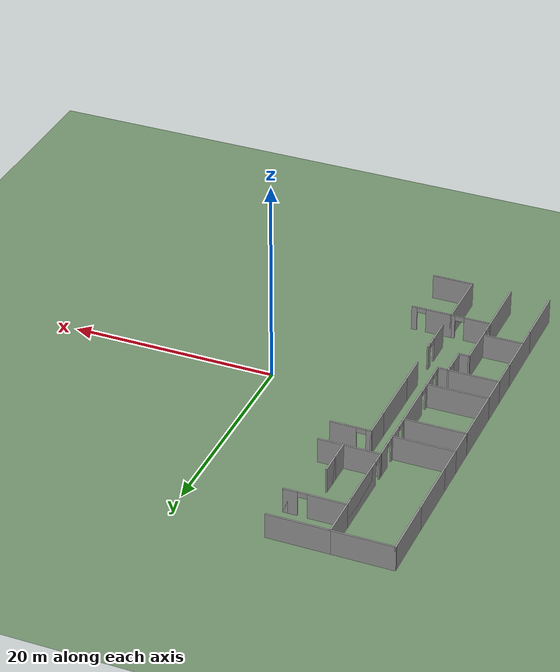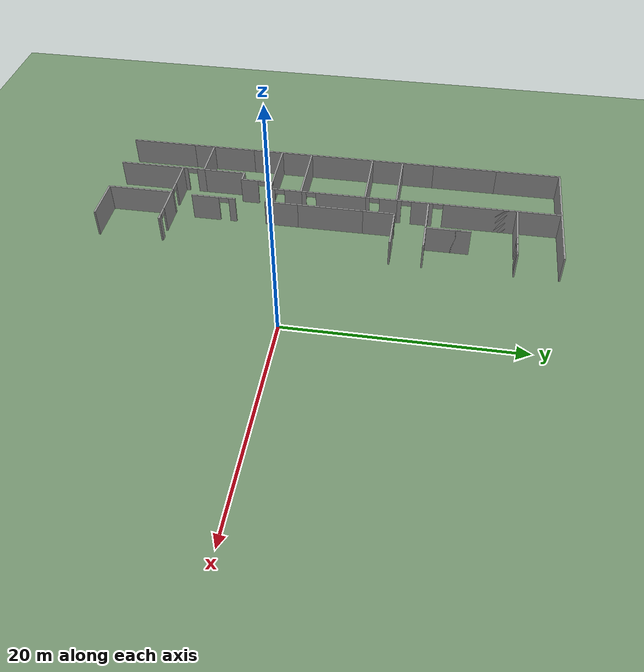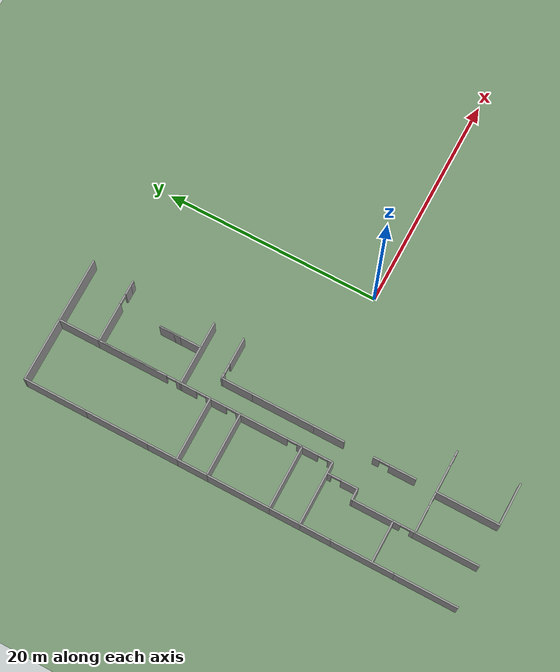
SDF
<sdf version="1.7">
 <world name="default">
  <model name="ground_plane">
   <static>1</static>
   <link name="link">
    <collision name="collision">
     <geometry><plane><normal>0 0 1</normal><size>600 600</size></plane></geometry>
     <surface>
      <contact><collide_bitmask>65535</collide_bitmask></contact>
      <friction><ode><mu>100</mu><mu2>50</mu2></ode></friction>
     </surface>
    </collision>
    <visual name="visual">
     <cast_shadows>0</cast_shadows>
     <geometry><plane><normal>0 0 1</normal><size>100 100</size></plane></geometry>
     <material><ambient>0.45 0.57 0.43 1</ambient><diffuse>0.45 0.57 0.43 1</diffuse></material>
    </visual>
   </link>
  </model>
  <model name="myhal_V3">
   <pose>-0.2201 2.1339 0 0 -0 0</pose>
   <link name="Wall_338">
    <collision name="Wall_338_Collision">
     <geometry><box><size>6 0.15 2.5</size></box></geometry>
     <pose>0 0 1.25 0 -0 0</pose>
    </collision>
    <visual name="Wall_338_Visual">
     <pose>0 0 1.25 0 -0 0</pose>
     <geometry><box><size>6 0.15 2.5</size></box></geometry>
     <material>
      <script><uri>file://media/materials/scripts/gazebo.material</uri><name>Gazebo/Grey</name></script>
      <ambient>1 1 1 1</ambient>
     </material>
     <meta><layer>0</layer></meta>
    </visual>
    <pose>-11.7 20.325 0 0 -0 3.14159</pose>
   </link>
   <link name="Wall_339">
    <collision name="Wall_339_Collision">
     <geometry><box><size>6 0.15 2.5</size></box></geometry>
     <pose>0 0 1.25 0 -0 0</pose>
    </collision>
    <visual name="Wall_339_Visual">
     <pose>0 0 1.25 0 -0 0</pose>
     <geometry><box><size>6 0.15 2.5</size></box></geometry>
     <material>
      <script><uri>file://media/materials/scripts/gazebo.material</uri><name>Gazebo/Grey</name></script>
      <ambient>1 1 1 1</ambient>
     </material>
     <meta><layer>0</layer></meta>
    </visual>
    <pose>-17.55 20.325 0 0 -0 3.14159</pose>
   </link>
   <link name="Wall_341">
    <collision name="Wall_341_Collision">
     <geometry><box><size>6 0.15 2.5</size></box></geometry>
     <pose>0 0 1.25 0 -0 0</pose>
    </collision>
    <visual name="Wall_341_Visual">
     <pose>0 0 1.25 0 -0 0</pose>
     <geometry><box><size>6 0.15 2.5</size></box></geometry>
     <material>
      <script><uri>file://media/materials/scripts/gazebo.material</uri><name>Gazebo/Grey</name></script>
      <ambient>1 1 1 1</ambient>
     </material>
     <meta><layer>0</layer></meta>
    </visual>
    <pose>-20.475 17.4 0 0 -0 -1.5708</pose>
   </link>
   <link name="Wall_342">
    <collision name="Wall_342_Collision">
     <geometry><box><size>6 0.15 2.5</size></box></geometry>
     <pose>0 0 1.25 0 -0 0</pose>
    </collision>
    <visual name="Wall_342_Visual">
     <pose>0 0 1.25 0 -0 0</pose>
     <geometry><box><size>6 0.15 2.5</size></box></geometry>
     <material>
      <script><uri>file://media/materials/scripts/gazebo.material</uri><name>Gazebo/Grey</name></script>
      <ambient>1 1 1 1</ambient>
     </material>
     <meta><layer>0</layer></meta>
    </visual>
    <pose>-20.475 11.55 0 0 -0 -1.5708</pose>
   </link>
   <link name="Wall_343">
    <collision name="Wall_343_Collision">
     <geometry><box><size>3 0.15 2.5</size></box></geometry>
     <pose>0 0 1.25 0 -0 0</pose>
    </collision>
    <visual name="Wall_343_Visual">
     <pose>0 0 1.25 0 -0 0</pose>
     <geometry><box><size>3 0.15 2.5</size></box></geometry>
     <material>
      <script><uri>file://media/materials/scripts/gazebo.material</uri><name>Gazebo/Grey</name></script>
      <ambient>1 1 1 1</ambient>
     </material>
     <meta><layer>0</layer></meta>
    </visual>
    <pose>-20.475 7.2 0 0 -0 -1.5708</pose>
   </link>
   <link name="Wall_344">
    <collision name="Wall_344_Collision">
     <geometry><box><size>3 0.15 2.5</size></box></geometry>
     <pose>0 0 1.25 0 -0 0</pose>
    </collision>
    <visual name="Wall_344_Visual">
     <pose>0 0 1.25 0 -0 0</pose>
     <geometry><box><size>3 0.15 2.5</size></box></geometry>
     <material>
      <script><uri>file://media/materials/scripts/gazebo.material</uri><name>Gazebo/Grey</name></script>
      <ambient>1 1 1 1</ambient>
     </material>
     <meta><layer>0</layer></meta>
    </visual>
    <pose>-20.475 4.35 0 0 -0 -1.5708</pose>
   </link>
   <link name="Wall_345">
    <collision name="Wall_345_Collision">
     <geometry><box><size>6 0.15 2.5</size></box></geometry>
     <pose>0 0 1.25 0 -0 0</pose>
    </collision>
    <visual name="Wall_345_Visual">
     <pose>0 0 1.25 0 -0 0</pose>
     <geometry><box><size>6 0.15 2.5</size></box></geometry>
     <material>
      <script><uri>file://media/materials/scripts/gazebo.material</uri><name>Gazebo/Grey</name></script>
      <ambient>1 1 1 1</ambient>
     </material>
     <meta><layer>0</layer></meta>
    </visual>
    <pose>-20.475 0 0 0 -0 -1.5708</pose>
   </link>
   <link name="Wall_347">
    <collision name="Wall_347_Collision">
     <geometry><box><size>3 0.15 2.5</size></box></geometry>
     <pose>0 0 1.25 0 -0 0</pose>
    </collision>
    <visual name="Wall_347_Visual">
     <pose>0 0 1.25 0 -0 0</pose>
     <geometry><box><size>3 0.15 2.5</size></box></geometry>
     <material>
      <script><uri>file://media/materials/scripts/gazebo.material</uri><name>Gazebo/Grey</name></script>
      <ambient>1 1 1 1</ambient>
     </material>
     <meta><layer>0</layer></meta>
    </visual>
    <pose>-20.475 -4.35 0 0 -0 -1.5708</pose>
   </link>
   <link name="Wall_348">
    <collision name="Wall_348_Collision">
     <geometry><box><size>3 0.15 2.5</size></box></geometry>
     <pose>0 0 1.25 0 -0 0</pose>
    </collision>
    <visual name="Wall_348_Visual">
     <pose>0 0 1.25 0 -0 0</pose>
     <geometry><box><size>3 0.15 2.5</size></box></geometry>
     <material>
      <script><uri>file://media/materials/scripts/gazebo.material</uri><name>Gazebo/Grey</name></script>
      <ambient>1 1 1 1</ambient>
     </material>
     <meta><layer>0</layer></meta>
    </visual>
    <pose>-20.475 -7.2 0 0 -0 -1.5708</pose>
   </link>
   <link name="Wall_349">
    <collision name="Wall_349_Collision">
     <geometry><box><size>6 0.15 2.5</size></box></geometry>
     <pose>0 0 1.25 0 -0 0</pose>
    </collision>
    <visual name="Wall_349_Visual">
     <pose>0 0 1.25 0 -0 0</pose>
     <geometry><box><size>6 0.15 2.5</size></box></geometry>
     <material>
      <script><uri>file://media/materials/scripts/gazebo.material</uri><name>Gazebo/Grey</name></script>
      <ambient>1 1 1 1</ambient>
     </material>
     <meta><layer>0</layer></meta>
    </visual>
    <pose>-20.475 -11.55 0 0 -0 -1.5708</pose>
   </link>
   <link name="Wall_351">
    <collision name="Wall_351_Collision">
     <geometry><box><size>6 0.15 2.5</size></box></geometry>
     <pose>0 0 1.25 0 -0 0</pose>
    </collision>
    <visual name="Wall_351_Visual">
     <pose>0 0 1.25 0 -0 0</pose>
     <geometry><box><size>6 0.15 2.5</size></box></geometry>
     <material>
      <script><uri>file://media/materials/scripts/gazebo.material</uri><name>Gazebo/Grey</name></script>
      <ambient>1 1 1 1</ambient>
     </material>
     <meta><layer>0</layer></meta>
    </visual>
    <pose>-20.475 -17.4 0 0 -0 -1.5708</pose>
   </link>
   <link name="Wall_358">
    <collision name="Wall_358_Collision">
     <geometry><box><size>4 0.15 2.5</size></box></geometry>
     <pose>0 0 1.25 0 -0 0</pose>
    </collision>
    <visual name="Wall_358_Visual">
     <pose>0 0 1.25 0 -0 0</pose>
     <geometry><box><size>4 0.15 2.5</size></box></geometry>
     <material>
      <script><uri>file://media/materials/scripts/gazebo.material</uri><name>Gazebo/Grey</name></script>
      <ambient>1 1 1 1</ambient>
     </material>
     <meta><layer>0</layer></meta>
    </visual>
    <pose>-14.625 18.4 0 0 -0 1.5708</pose>
   </link>
   <link name="Wall_360">
    <pose>-11.7 16.475 0 0 -0 0</pose>
    <visual name="Wall_360_Visual_0">
     <pose>-1.13429 0 1.25 0 -0 0</pose>
     <geometry><box><size>3.73142 0.15 2.5</size></box></geometry>
     <material>
      <script><uri>file://media/materials/scripts/gazebo.material</uri><name>Gazebo/Grey</name></script>
      <ambient>1 1 1 1</ambient>
     </material>
     <meta><layer>0</layer></meta>
    </visual>
    <collision name="Wall_360_Collision_0">
     <geometry><box><size>3.73142 0.15 2.5</size></box></geometry>
     <pose>-1.13429 0 1.25 0 -0 0</pose>
    </collision>
    <visual name="Wall_360_Visual_1">
     <pose>2.31571 0 1.25 0 -0 0</pose>
     <geometry><box><size>1.36858 0.15 2.5</size></box></geometry>
     <material>
      <script><uri>file://media/materials/scripts/gazebo.material</uri><name>Gazebo/Grey</name></script>
      <ambient>1 1 1 1</ambient>
     </material>
     <meta><layer>0</layer></meta>
    </visual>
    <collision name="Wall_360_Collision_1">
     <geometry><box><size>1.36858 0.15 2.5</size></box></geometry>
     <pose>2.31571 0 1.25 0 -0 0</pose>
    </collision>
    <visual name="Wall_360_Visual_2">
     <pose>2.74704 0 1.25 0 -0 0</pose>
     <geometry><box><size>0.505924 0.15 2.5</size></box></geometry>
     <material>
      <script><uri>file://media/materials/scripts/gazebo.material</uri><name>Gazebo/Grey</name></script>
      <ambient>1 1 1 1</ambient>
     </material>
     <meta><layer>0</layer></meta>
    </visual>
    <collision name="Wall_360_Collision_2">
     <geometry><box><size>0.505924 0.15 2.5</size></box></geometry>
     <pose>2.74704 0 1.25 0 -0 0</pose>
    </collision>
    <visual name="Wall_360_Visual_3">
     <pose>1.16275 0 2.25 0 -0 0</pose>
     <geometry><box><size>0.862653 0.15 0.5</size></box></geometry>
     <material>
      <script><uri>file://media/materials/scripts/gazebo.material</uri><name>Gazebo/Grey</name></script>
      <ambient>1 1 1 1</ambient>
     </material>
     <meta><layer>0</layer></meta>
    </visual>
    <collision name="Wall_360_Collision_3">
     <geometry><box><size>0.862653 0.15 0.5</size></box></geometry>
     <pose>1.16275 0 2.25 0 -0 0</pose>
    </collision>
   </link>
   <link name="Wall_363">
    <collision name="Wall_363_Collision">
     <geometry><box><size>6 0.15 2.5</size></box></geometry>
     <pose>0 0 1.25 0 -0 0</pose>
    </collision>
    <visual name="Wall_363_Visual">
     <pose>0 0 1.25 0 -0 0</pose>
     <geometry><box><size>6 0.15 2.5</size></box></geometry>
     <material>
      <script><uri>file://media/materials/scripts/gazebo.material</uri><name>Gazebo/Grey</name></script>
      <ambient>1 1 1 1</ambient>
     </material>
     <meta><layer>0</layer></meta>
    </visual>
    <pose>-11.7 8.625 0 0 -0 3.14159</pose>
   </link>
   <link name="Wall_364">
    <pose>-14.625 12.55 0 0 -0 1.5708</pose>
    <visual name="Wall_364_Visual_0">
     <pose>-3.75018 0 1.25 0 -0 0</pose>
     <geometry><box><size>0.499636 0.15 2.5</size></box></geometry>
     <material>
      <script><uri>file://media/materials/scripts/gazebo.material</uri><name>Gazebo/Grey</name></script>
      <ambient>1 1 1 1</ambient>
     </material>
     <meta><layer>0</layer></meta>
    </visual>
    <collision name="Wall_364_Collision_0">
     <geometry><box><size>0.499636 0.15 2.5</size></box></geometry>
     <pose>-3.75018 0 1.25 0 -0 0</pose>
    </collision>
    <visual name="Wall_364_Visual_1">
     <pose>0.699818 0 1.25 0 -0 0</pose>
     <geometry><box><size>6.60036 0.15 2.5</size></box></geometry>
     <material>
      <script><uri>file://media/materials/scripts/gazebo.material</uri><name>Gazebo/Grey</name></script>
      <ambient>1 1 1 1</ambient>
     </material>
     <meta><layer>0</layer></meta>
    </visual>
    <collision name="Wall_364_Collision_1">
     <geometry><box><size>6.60036 0.15 2.5</size></box></geometry>
     <pose>0.699818 0 1.25 0 -0 0</pose>
    </collision>
    <visual name="Wall_364_Visual_2">
     <pose>1.13114 0 1.25 0 -0 0</pose>
     <geometry><box><size>5.73771 0.15 2.5</size></box></geometry>
     <material>
      <script><uri>file://media/materials/scripts/gazebo.material</uri><name>Gazebo/Grey</name></script>
      <ambient>1 1 1 1</ambient>
     </material>
     <meta><layer>0</layer></meta>
    </visual>
    <collision name="Wall_364_Collision_2">
     <geometry><box><size>5.73771 0.15 2.5</size></box></geometry>
     <pose>1.13114 0 1.25 0 -0 0</pose>
    </collision>
    <visual name="Wall_364_Visual_3">
     <pose>-3.06904 0 2.25 0 -0 0</pose>
     <geometry><box><size>0.862653 0.15 0.5</size></box></geometry>
     <material>
      <script><uri>file://media/materials/scripts/gazebo.material</uri><name>Gazebo/Grey</name></script>
      <ambient>1 1 1 1</ambient>
     </material>
     <meta><layer>0</layer></meta>
    </visual>
    <collision name="Wall_364_Collision_3">
     <geometry><box><size>0.862653 0.15 0.5</size></box></geometry>
     <pose>-3.06904 0 2.25 0 -0 0</pose>
    </collision>
   </link>
   <link name="Wall_367">
    <collision name="Wall_367_Collision">
     <geometry><box><size>4 0.15 2.5</size></box></geometry>
     <pose>0 0 1.25 0 -0 0</pose>
    </collision>
    <visual name="Wall_367_Visual">
     <pose>0 0 1.25 0 -0 0</pose>
     <geometry><box><size>4 0.15 2.5</size></box></geometry>
     <material>
      <script><uri>file://media/materials/scripts/gazebo.material</uri><name>Gazebo/Grey</name></script>
      <ambient>1 1 1 1</ambient>
     </material>
     <meta><layer>0</layer></meta>
    </visual>
    <pose>-11.125 10.55 0 0 -0 1.5708</pose>
   </link>
   <link name="Wall_402">
    <pose>-14.625 7.2 0 0 -0 -1.5708</pose>
    <visual name="Wall_402_Visual_0">
     <pose>-0.707028 0 1.25 0 -0 0</pose>
     <geometry><box><size>1.58594 0.15 2.5</size></box></geometry>
     <material>
      <script><uri>file://media/materials/scripts/gazebo.material</uri><name>Gazebo/Grey</name></script>
      <ambient>1 1 1 1</ambient>
     </material>
     <meta><layer>0</layer></meta>
    </visual>
    <collision name="Wall_402_Collision_0">
     <geometry><box><size>1.58594 0.15 2.5</size></box></geometry>
     <pose>-0.707028 0 1.25 0 -0 0</pose>
    </collision>
    <visual name="Wall_402_Visual_1">
     <pose>1.24297 0 1.25 0 -0 0</pose>
     <geometry><box><size>0.514056 0.15 2.5</size></box></geometry>
     <material>
      <script><uri>file://media/materials/scripts/gazebo.material</uri><name>Gazebo/Grey</name></script>
      <ambient>1 1 1 1</ambient>
     </material>
     <meta><layer>0</layer></meta>
    </visual>
    <collision name="Wall_402_Collision_1">
     <geometry><box><size>0.514056 0.15 2.5</size></box></geometry>
     <pose>1.24297 0 1.25 0 -0 0</pose>
    </collision>
    <visual name="Wall_402_Visual_2">
     <pose>0.535944 0 2.25 0 -0 0</pose>
     <geometry><box><size>0.9 0.15 0.5</size></box></geometry>
     <material>
      <script><uri>file://media/materials/scripts/gazebo.material</uri><name>Gazebo/Grey</name></script>
      <ambient>1 1 1 1</ambient>
     </material>
     <meta><layer>0</layer></meta>
    </visual>
    <collision name="Wall_402_Collision_2">
     <geometry><box><size>0.9 0.15 0.5</size></box></geometry>
     <pose>0.535944 0 2.25 0 -0 0</pose>
    </collision>
   </link>
   <link name="Wall_403">
    <collision name="Wall_403_Collision">
     <geometry><box><size>6 0.15 2.5</size></box></geometry>
     <pose>0 0 1.25 0 -0 0</pose>
    </collision>
    <visual name="Wall_403_Visual">
     <pose>0 0 1.25 0 -0 0</pose>
     <geometry><box><size>6 0.15 2.5</size></box></geometry>
     <material>
      <script><uri>file://media/materials/scripts/gazebo.material</uri><name>Gazebo/Grey</name></script>
      <ambient>1 1 1 1</ambient>
     </material>
     <meta><layer>0</layer></meta>
    </visual>
    <pose>-17.55 5.775 0 0 -0 3.14159</pose>
   </link>
   <link name="Wall_405">
    <pose>-14.625 4.35 0 0 -0 -1.5708</pose>
    <visual name="Wall_405_Visual_0">
     <pose>-0.698064 0 1.25 0 -0 0</pose>
     <geometry><box><size>1.60387 0.15 2.5</size></box></geometry>
     <material>
      <script><uri>file://media/materials/scripts/gazebo.material</uri><name>Gazebo/Grey</name></script>
      <ambient>1 1 1 1</ambient>
     </material>
     <meta><layer>0</layer></meta>
    </visual>
    <collision name="Wall_405_Collision_0">
     <geometry><box><size>1.60387 0.15 2.5</size></box></geometry>
     <pose>-0.698064 0 1.25 0 -0 0</pose>
    </collision>
    <visual name="Wall_405_Visual_1">
     <pose>1.25194 0 1.25 0 -0 0</pose>
     <geometry><box><size>0.496128 0.15 2.5</size></box></geometry>
     <material>
      <script><uri>file://media/materials/scripts/gazebo.material</uri><name>Gazebo/Grey</name></script>
      <ambient>1 1 1 1</ambient>
     </material>
     <meta><layer>0</layer></meta>
    </visual>
    <collision name="Wall_405_Collision_1">
     <geometry><box><size>0.496128 0.15 2.5</size></box></geometry>
     <pose>1.25194 0 1.25 0 -0 0</pose>
    </collision>
    <visual name="Wall_405_Visual_2">
     <pose>0.553872 0 2.25 0 -0 0</pose>
     <geometry><box><size>0.9 0.15 0.5</size></box></geometry>
     <material>
      <script><uri>file://media/materials/scripts/gazebo.material</uri><name>Gazebo/Grey</name></script>
      <ambient>1 1 1 1</ambient>
     </material>
     <meta><layer>0</layer></meta>
    </visual>
    <collision name="Wall_405_Collision_2">
     <geometry><box><size>0.9 0.15 0.5</size></box></geometry>
     <pose>0.553872 0 2.25 0 -0 0</pose>
    </collision>
   </link>
   <link name="Wall_406">
    <collision name="Wall_406_Collision">
     <geometry><box><size>6 0.15 2.5</size></box></geometry>
     <pose>0 0 1.25 0 -0 0</pose>
    </collision>
    <visual name="Wall_406_Visual">
     <pose>0 0 1.25 0 -0 0</pose>
     <geometry><box><size>6 0.15 2.5</size></box></geometry>
     <material>
      <script><uri>file://media/materials/scripts/gazebo.material</uri><name>Gazebo/Grey</name></script>
      <ambient>1 1 1 1</ambient>
     </material>
     <meta><layer>0</layer></meta>
    </visual>
    <pose>-17.55 2.925 0 0 -0 3.14159</pose>
   </link>
   <link name="Wall_408">
    <pose>-14.625 0 0 0 -0 -1.5708</pose>
    <visual name="Wall_408_Visual_0">
     <pose>-0.728079 0 1.25 0 -0 0</pose>
     <geometry><box><size>4.54384 0.15 2.5</size></box></geometry>
     <material>
      <script><uri>file://media/materials/scripts/gazebo.material</uri><name>Gazebo/Grey</name></script>
      <ambient>1 1 1 1</ambient>
     </material>
     <meta><layer>0</layer></meta>
    </visual>
    <collision name="Wall_408_Collision_0">
     <geometry><box><size>4.54384 0.15 2.5</size></box></geometry>
     <pose>-0.728079 0 1.25 0 -0 0</pose>
    </collision>
    <visual name="Wall_408_Visual_1">
     <pose>2.72192 0 1.25 0 -0 0</pose>
     <geometry><box><size>0.556159 0.15 2.5</size></box></geometry>
     <material>
      <script><uri>file://media/materials/scripts/gazebo.material</uri><name>Gazebo/Grey</name></script>
      <ambient>1 1 1 1</ambient>
     </material>
     <meta><layer>0</layer></meta>
    </visual>
    <collision name="Wall_408_Collision_1">
     <geometry><box><size>0.556159 0.15 2.5</size></box></geometry>
     <pose>2.72192 0 1.25 0 -0 0</pose>
    </collision>
    <visual name="Wall_408_Visual_2">
     <pose>1.99384 0 2.25 0 -0 0</pose>
     <geometry><box><size>0.9 0.15 0.5</size></box></geometry>
     <material>
      <script><uri>file://media/materials/scripts/gazebo.material</uri><name>Gazebo/Grey</name></script>
      <ambient>1 1 1 1</ambient>
     </material>
     <meta><layer>0</layer></meta>
    </visual>
    <collision name="Wall_408_Collision_2">
     <geometry><box><size>0.9 0.15 0.5</size></box></geometry>
     <pose>1.99384 0 2.25 0 -0 0</pose>
    </collision>
   </link>
   <link name="Wall_409">
    <collision name="Wall_409_Collision">
     <geometry><box><size>6 0.15 2.5</size></box></geometry>
     <pose>0 0 1.25 0 -0 0</pose>
    </collision>
    <visual name="Wall_409_Visual">
     <pose>0 0 1.25 0 -0 0</pose>
     <geometry><box><size>6 0.15 2.5</size></box></geometry>
     <material>
      <script><uri>file://media/materials/scripts/gazebo.material</uri><name>Gazebo/Grey</name></script>
      <ambient>1 1 1 1</ambient>
     </material>
     <meta><layer>0</layer></meta>
    </visual>
    <pose>-17.55 -2.925 0 0 -0 3.14159</pose>
   </link>
   <link name="Wall_411">
    <pose>-14.625 -4.35 0 0 -0 -1.5708</pose>
    <visual name="Wall_411_Visual_0">
     <pose>-0.710096 0 1.25 0 -0 0</pose>
     <geometry><box><size>1.57981 0.15 2.5</size></box></geometry>
     <material>
      <script><uri>file://media/materials/scripts/gazebo.material</uri><name>Gazebo/Grey</name></script>
      <ambient>1 1 1 1</ambient>
     </material>
     <meta><layer>0</layer></meta>
    </visual>
    <collision name="Wall_411_Collision_0">
     <geometry><box><size>1.57981 0.15 2.5</size></box></geometry>
     <pose>-0.710096 0 1.25 0 -0 0</pose>
    </collision>
    <visual name="Wall_411_Visual_1">
     <pose>1.2399 0 1.25 0 -0 0</pose>
     <geometry><box><size>0.520192 0.15 2.5</size></box></geometry>
     <material>
      <script><uri>file://media/materials/scripts/gazebo.material</uri><name>Gazebo/Grey</name></script>
      <ambient>1 1 1 1</ambient>
     </material>
     <meta><layer>0</layer></meta>
    </visual>
    <collision name="Wall_411_Collision_1">
     <geometry><box><size>0.520192 0.15 2.5</size></box></geometry>
     <pose>1.2399 0 1.25 0 -0 0</pose>
    </collision>
    <visual name="Wall_411_Visual_2">
     <pose>0.529808 0 2.25 0 -0 0</pose>
     <geometry><box><size>0.9 0.15 0.5</size></box></geometry>
     <material>
      <script><uri>file://media/materials/scripts/gazebo.material</uri><name>Gazebo/Grey</name></script>
      <ambient>1 1 1 1</ambient>
     </material>
     <meta><layer>0</layer></meta>
    </visual>
    <collision name="Wall_411_Collision_2">
     <geometry><box><size>0.9 0.15 0.5</size></box></geometry>
     <pose>0.529808 0 2.25 0 -0 0</pose>
    </collision>
   </link>
   <link name="Wall_412">
    <collision name="Wall_412_Collision">
     <geometry><box><size>6 0.15 2.5</size></box></geometry>
     <pose>0 0 1.25 0 -0 0</pose>
    </collision>
    <visual name="Wall_412_Visual">
     <pose>0 0 1.25 0 -0 0</pose>
     <geometry><box><size>6 0.15 2.5</size></box></geometry>
     <material>
      <script><uri>file://media/materials/scripts/gazebo.material</uri><name>Gazebo/Grey</name></script>
      <ambient>1 1 1 1</ambient>
     </material>
     <meta><layer>0</layer></meta>
    </visual>
    <pose>-17.55 -5.775 0 0 -0 3.14159</pose>
   </link>
   <link name="Wall_416">
    <pose>-15.625 -7.2 0 0 -0 1.5708</pose>
    <visual name="Wall_416_Visual_0">
     <pose>-0.698731 0 1.25 0 -0 0</pose>
     <geometry><box><size>1.60254 0.15 2.5</size></box></geometry>
     <material>
      <script><uri>file://media/materials/scripts/gazebo.material</uri><name>Gazebo/Grey</name></script>
      <ambient>1 1 1 1</ambient>
     </material>
     <meta><layer>0</layer></meta>
    </visual>
    <collision name="Wall_416_Collision_0">
     <geometry><box><size>1.60254 0.15 2.5</size></box></geometry>
     <pose>-0.698731 0 1.25 0 -0 0</pose>
    </collision>
    <visual name="Wall_416_Visual_1">
     <pose>1.25127 0 1.25 0 -0 0</pose>
     <geometry><box><size>0.497462 0.15 2.5</size></box></geometry>
     <material>
      <script><uri>file://media/materials/scripts/gazebo.material</uri><name>Gazebo/Grey</name></script>
      <ambient>1 1 1 1</ambient>
     </material>
     <meta><layer>0</layer></meta>
    </visual>
    <collision name="Wall_416_Collision_1">
     <geometry><box><size>0.497462 0.15 2.5</size></box></geometry>
     <pose>1.25127 0 1.25 0 -0 0</pose>
    </collision>
    <visual name="Wall_416_Visual_2">
     <pose>0.552538 0 2.25 0 -0 0</pose>
     <geometry><box><size>0.9 0.15 0.5</size></box></geometry>
     <material>
      <script><uri>file://media/materials/scripts/gazebo.material</uri><name>Gazebo/Grey</name></script>
      <ambient>1 1 1 1</ambient>
     </material>
     <meta><layer>0</layer></meta>
    </visual>
    <collision name="Wall_416_Collision_2">
     <geometry><box><size>0.9 0.15 0.5</size></box></geometry>
     <pose>0.552538 0 2.25 0 -0 0</pose>
    </collision>
   </link>
   <link name="Wall_422">
    <collision name="Wall_422_Collision">
     <geometry><box><size>1.15 0.15 2.5</size></box></geometry>
     <pose>0 0 1.25 0 -0 0</pose>
    </collision>
    <visual name="Wall_422_Visual">
     <pose>0 0 1.25 0 -0 0</pose>
     <geometry><box><size>1.15 0.15 2.5</size></box></geometry>
     <material>
      <script><uri>file://media/materials/scripts/gazebo.material</uri><name>Gazebo/Grey</name></script>
      <ambient>1 1 1 1</ambient>
     </material>
     <meta><layer>0</layer></meta>
    </visual>
    <pose>-16.125 -8.625 0 0 -0 0</pose>
   </link>
   <link name="Wall_425">
    <collision name="Wall_425_Collision">
     <geometry><box><size>6 0.15 2.5</size></box></geometry>
     <pose>0 0 1.25 0 -0 0</pose>
    </collision>
    <visual name="Wall_425_Visual">
     <pose>0 0 1.25 0 -0 0</pose>
     <geometry><box><size>6 0.15 2.5</size></box></geometry>
     <material>
      <script><uri>file://media/materials/scripts/gazebo.material</uri><name>Gazebo/Grey</name></script>
      <ambient>1 1 1 1</ambient>
     </material>
     <meta><layer>0</layer></meta>
    </visual>
    <pose>-16.6251 -17.3996 0 0 -0 1.5708</pose>
   </link>
   <link name="Wall_426">
    <pose>-14.7 -14.4748 0 0 -0 -0.00011</pose>
    <visual name="Wall_426_Visual_0">
     <pose>-0.680867 0 1.25 0 -0 0</pose>
     <geometry><box><size>2.63827 0.15 2.5</size></box></geometry>
     <material>
      <script><uri>file://media/materials/scripts/gazebo.material</uri><name>Gazebo/Grey</name></script>
      <ambient>1 1 1 1</ambient>
     </material>
     <meta><layer>0</layer></meta>
    </visual>
    <collision name="Wall_426_Collision_0">
     <geometry><box><size>2.63827 0.15 2.5</size></box></geometry>
     <pose>-0.680867 0 1.25 0 -0 0</pose>
    </collision>
    <visual name="Wall_426_Visual_1">
     <pose>1.76913 0 1.25 0 -0 0</pose>
     <geometry><box><size>0.461734 0.15 2.5</size></box></geometry>
     <material>
      <script><uri>file://media/materials/scripts/gazebo.material</uri><name>Gazebo/Grey</name></script>
      <ambient>1 1 1 1</ambient>
     </material>
     <meta><layer>0</layer></meta>
    </visual>
    <collision name="Wall_426_Collision_1">
     <geometry><box><size>0.461734 0.15 2.5</size></box></geometry>
     <pose>1.76913 0 1.25 0 -0 0</pose>
    </collision>
    <visual name="Wall_426_Visual_2">
     <pose>1.08827 0 2.25 0 -0 0</pose>
     <geometry><box><size>0.9 0.15 0.5</size></box></geometry>
     <material>
      <script><uri>file://media/materials/scripts/gazebo.material</uri><name>Gazebo/Grey</name></script>
      <ambient>1 1 1 1</ambient>
     </material>
     <meta><layer>0</layer></meta>
    </visual>
    <collision name="Wall_426_Collision_2">
     <geometry><box><size>0.9 0.15 0.5</size></box></geometry>
     <pose>1.08827 0 2.25 0 -0 0</pose>
    </collision>
   </link>
   <link name="Wall_427">
    <collision name="Wall_427_Collision">
     <geometry><box><size>6 0.15 2.5</size></box></geometry>
     <pose>0 0 1.25 0 -0 0</pose>
    </collision>
    <visual name="Wall_427_Visual">
     <pose>0 0 1.25 0 -0 0</pose>
     <geometry><box><size>6 0.15 2.5</size></box></geometry>
     <material>
      <script><uri>file://media/materials/scripts/gazebo.material</uri><name>Gazebo/Grey</name></script>
      <ambient>1 1 1 1</ambient>
     </material>
     <meta><layer>0</layer></meta>
    </visual>
    <pose>-12.775 -17.4 0 0 -0 -1.5708</pose>
   </link>
   <link name="Wall_428">
    <collision name="Wall_428_Collision">
     <geometry><box><size>4 0.15 2.5</size></box></geometry>
     <pose>0 0 1.25 0 -0 0</pose>
    </collision>
    <visual name="Wall_428_Visual">
     <pose>0 0 1.25 0 -0 0</pose>
     <geometry><box><size>4 0.15 2.5</size></box></geometry>
     <material>
      <script><uri>file://media/materials/scripts/gazebo.material</uri><name>Gazebo/Grey</name></script>
      <ambient>1 1 1 1</ambient>
     </material>
     <meta><layer>0</layer></meta>
    </visual>
    <pose>-10.85 -20.325 0 0 -0 0</pose>
   </link>
   <link name="Wall_430">
    <pose>-10.85 -14.475 0 0 -0 3.14159</pose>
    <visual name="Wall_430_Visual_0">
     <pose>-1.73412 0 1.25 0 -0 0</pose>
     <geometry><box><size>0.531767 0.15 2.5</size></box></geometry>
     <material>
      <script><uri>file://media/materials/scripts/gazebo.material</uri><name>Gazebo/Grey</name></script>
      <ambient>1 1 1 1</ambient>
     </material>
     <meta><layer>0</layer></meta>
    </visual>
    <collision name="Wall_430_Collision_0">
     <geometry><box><size>0.531767 0.15 2.5</size></box></geometry>
     <pose>-1.73412 0 1.25 0 -0 0</pose>
    </collision>
    <visual name="Wall_430_Visual_1">
     <pose>0.715883 0 1.25 0 -0 0</pose>
     <geometry><box><size>2.56823 0.15 2.5</size></box></geometry>
     <material>
      <script><uri>file://media/materials/scripts/gazebo.material</uri><name>Gazebo/Grey</name></script>
      <ambient>1 1 1 1</ambient>
     </material>
     <meta><layer>0</layer></meta>
    </visual>
    <collision name="Wall_430_Collision_1">
     <geometry><box><size>2.56823 0.15 2.5</size></box></geometry>
     <pose>0.715883 0 1.25 0 -0 0</pose>
    </collision>
    <visual name="Wall_430_Visual_2">
     <pose>-1.01823 0 2.25 0 -0 0</pose>
     <geometry><box><size>0.9 0.15 0.5</size></box></geometry>
     <material>
      <script><uri>file://media/materials/scripts/gazebo.material</uri><name>Gazebo/Grey</name></script>
      <ambient>1 1 1 1</ambient>
     </material>
     <meta><layer>0</layer></meta>
    </visual>
    <collision name="Wall_430_Collision_2">
     <geometry><box><size>0.9 0.15 0.5</size></box></geometry>
     <pose>-1.01823 0 2.25 0 -0 0</pose>
    </collision>
   </link>
   <link name="Wall_439">
    <pose>-10.7 5.775 0 0 -0 3.14159</pose>
    <visual name="Wall_439_Visual_0">
     <pose>-0.724975 0 1.25 0 -0 0</pose>
     <geometry><box><size>2.55005 0.15 2.5</size></box></geometry>
     <material>
      <script><uri>file://media/materials/scripts/gazebo.material</uri><name>Gazebo/Grey</name></script>
      <ambient>1 1 1 1</ambient>
     </material>
     <meta><layer>0</layer></meta>
    </visual>
    <collision name="Wall_439_Collision_0">
     <geometry><box><size>2.55005 0.15 2.5</size></box></geometry>
     <pose>-0.724975 0 1.25 0 -0 0</pose>
    </collision>
    <visual name="Wall_439_Visual_1">
     <pose>1.72503 0 1.25 0 -0 0</pose>
     <geometry><box><size>0.549949 0.15 2.5</size></box></geometry>
     <material>
      <script><uri>file://media/materials/scripts/gazebo.material</uri><name>Gazebo/Grey</name></script>
      <ambient>1 1 1 1</ambient>
     </material>
     <meta><layer>0</layer></meta>
    </visual>
    <collision name="Wall_439_Collision_1">
     <geometry><box><size>0.549949 0.15 2.5</size></box></geometry>
     <pose>1.72503 0 1.25 0 -0 0</pose>
    </collision>
    <visual name="Wall_439_Visual_2">
     <pose>1.00005 0 2.25 0 -0 0</pose>
     <geometry><box><size>0.9 0.15 0.5</size></box></geometry>
     <material>
      <script><uri>file://media/materials/scripts/gazebo.material</uri><name>Gazebo/Grey</name></script>
      <ambient>1 1 1 1</ambient>
     </material>
     <meta><layer>0</layer></meta>
    </visual>
    <collision name="Wall_439_Collision_2">
     <geometry><box><size>0.9 0.15 0.5</size></box></geometry>
     <pose>1.00005 0 2.25 0 -0 0</pose>
    </collision>
   </link>
   <link name="Wall_441">
    <collision name="Wall_441_Collision">
     <geometry><box><size>3 0.15 2.5</size></box></geometry>
     <pose>0 0 1.25 0 -0 0</pose>
    </collision>
    <visual name="Wall_441_Visual">
     <pose>0 0 1.25 0 -0 0</pose>
     <geometry><box><size>3 0.15 2.5</size></box></geometry>
     <material>
      <script><uri>file://media/materials/scripts/gazebo.material</uri><name>Gazebo/Grey</name></script>
      <ambient>1 1 1 1</ambient>
     </material>
     <meta><layer>0</layer></meta>
    </visual>
    <pose>-12.625 4.35 0 0 -0 -1.5708</pose>
   </link>
   <link name="Wall_442">
    <collision name="Wall_442_Collision">
     <geometry><box><size>6 0.15 2.5</size></box></geometry>
     <pose>0 0 1.25 0 -0 0</pose>
    </collision>
    <visual name="Wall_442_Visual">
     <pose>0 0 1.25 0 -0 0</pose>
     <geometry><box><size>6 0.15 2.5</size></box></geometry>
     <material>
      <script><uri>file://media/materials/scripts/gazebo.material</uri><name>Gazebo/Grey</name></script>
      <ambient>1 1 1 1</ambient>
     </material>
     <meta><layer>0</layer></meta>
    </visual>
    <pose>-12.625 0 0 0 -0 -1.5708</pose>
   </link>
   <link name="Wall_443">
    <collision name="Wall_443_Collision">
     <geometry><box><size>3 0.15 2.5</size></box></geometry>
     <pose>0 0 1.25 0 -0 0</pose>
    </collision>
    <visual name="Wall_443_Visual">
     <pose>0 0 1.25 0 -0 0</pose>
     <geometry><box><size>3 0.15 2.5</size></box></geometry>
     <material>
      <script><uri>file://media/materials/scripts/gazebo.material</uri><name>Gazebo/Grey</name></script>
      <ambient>1 1 1 1</ambient>
     </material>
     <meta><layer>0</layer></meta>
    </visual>
    <pose>-12.625 -4.35 0 0 -0 -1.5708</pose>
   </link>
   <link name="Wall_451">
    <collision name="Wall_451_Collision">
     <geometry><box><size>4 0.15 2.5</size></box></geometry>
     <pose>0 0 1.25 0 -0 0</pose>
    </collision>
    <visual name="Wall_451_Visual">
     <pose>0 0 1.25 0 -0 0</pose>
     <geometry><box><size>4 0.15 2.5</size></box></geometry>
     <material>
      <script><uri>file://media/materials/scripts/gazebo.material</uri><name>Gazebo/Grey</name></script>
      <ambient>1 1 1 1</ambient>
     </material>
     <meta><layer>0</layer></meta>
    </visual>
    <pose>-16.625 -10.55 0 0 -0 -1.5708</pose>
   </link>
   <link name="Wall_452">
    <collision name="Wall_452_Collision">
     <geometry><box><size>4 0.15 2.5</size></box></geometry>
     <pose>0 0 1.25 0 -0 0</pose>
    </collision>
    <visual name="Wall_452_Visual">
     <pose>0 0 1.25 0 -0 0</pose>
     <geometry><box><size>4 0.15 2.5</size></box></geometry>
     <material>
      <script><uri>file://media/materials/scripts/gazebo.material</uri><name>Gazebo/Grey</name></script>
      <ambient>1 1 1 1</ambient>
     </material>
     <meta><layer>0</layer></meta>
    </visual>
    <pose>-18.55 -12.475 0 0 -0 3.14159</pose>
   </link>
   <link name="Wall_454">
    <pose>-16.625 -13.4748 0 0 -0 -1.57083</pose>
    <visual name="Wall_454_Visual_0">
     <pose>-0.701103 0 1.25 0 -0 0</pose>
     <geometry><box><size>0.747794 0.15 2.5</size></box></geometry>
     <material>
      <script><uri>file://media/materials/scripts/gazebo.material</uri><name>Gazebo/Grey</name></script>
      <ambient>1 1 1 1</ambient>
     </material>
     <meta><layer>0</layer></meta>
    </visual>
    <collision name="Wall_454_Collision_0">
     <geometry><box><size>0.747794 0.15 2.5</size></box></geometry>
     <pose>-0.701103 0 1.25 0 -0 0</pose>
    </collision>
    <visual name="Wall_454_Visual_1">
     <pose>0.823897 0 1.25 0 -0 0</pose>
     <geometry><box><size>0.502206 0.15 2.5</size></box></geometry>
     <material>
      <script><uri>file://media/materials/scripts/gazebo.material</uri><name>Gazebo/Grey</name></script>
      <ambient>1 1 1 1</ambient>
     </material>
     <meta><layer>0</layer></meta>
    </visual>
    <collision name="Wall_454_Collision_1">
     <geometry><box><size>0.502206 0.15 2.5</size></box></geometry>
     <pose>0.823897 0 1.25 0 -0 0</pose>
    </collision>
    <visual name="Wall_454_Visual_2">
     <pose>0.122794 0 2.25 0 -0 0</pose>
     <geometry><box><size>0.9 0.15 0.5</size></box></geometry>
     <material>
      <script><uri>file://media/materials/scripts/gazebo.material</uri><name>Gazebo/Grey</name></script>
      <ambient>1 1 1 1</ambient>
     </material>
     <meta><layer>0</layer></meta>
    </visual>
    <collision name="Wall_454_Collision_2">
     <geometry><box><size>0.9 0.15 0.5</size></box></geometry>
     <pose>0.122794 0 2.25 0 -0 0</pose>
    </collision>
   </link>
   <link name="Wall_460">
    <pose>-12.625 -10.55 0 0 -0 -1.5708</pose>
    <visual name="Wall_460_Visual_0">
     <pose>-1.70089 0 1.25 0 -0 0</pose>
     <geometry><box><size>0.598217 0.15 2.5</size></box></geometry>
     <material>
      <script><uri>file://media/materials/scripts/gazebo.material</uri><name>Gazebo/Grey</name></script>
      <ambient>1 1 1 1</ambient>
     </material>
     <meta><layer>0</layer></meta>
    </visual>
    <collision name="Wall_460_Collision_0">
     <geometry><box><size>0.598217 0.15 2.5</size></box></geometry>
     <pose>-1.70089 0 1.25 0 -0 0</pose>
    </collision>
    <visual name="Wall_460_Visual_1">
     <pose>0.749108 0 1.25 0 -0 0</pose>
     <geometry><box><size>2.50178 0.15 2.5</size></box></geometry>
     <material>
      <script><uri>file://media/materials/scripts/gazebo.material</uri><name>Gazebo/Grey</name></script>
      <ambient>1 1 1 1</ambient>
     </material>
     <meta><layer>0</layer></meta>
    </visual>
    <collision name="Wall_460_Collision_1">
     <geometry><box><size>2.50178 0.15 2.5</size></box></geometry>
     <pose>0.749108 0 1.25 0 -0 0</pose>
    </collision>
    <visual name="Wall_460_Visual_2">
     <pose>-0.951783 0 2.25 0 -0 0</pose>
     <geometry><box><size>0.9 0.15 0.5</size></box></geometry>
     <material>
      <script><uri>file://media/materials/scripts/gazebo.material</uri><name>Gazebo/Grey</name></script>
      <ambient>1 1 1 1</ambient>
     </material>
     <meta><layer>0</layer></meta>
    </visual>
    <collision name="Wall_460_Collision_2">
     <geometry><box><size>0.9 0.15 0.5</size></box></geometry>
     <pose>-0.951783 0 2.25 0 -0 0</pose>
    </collision>
   </link>
   <link name="Wall_583">
    <collision name="Wall_583_Collision">
     <geometry><box><size>2 0.15 2.5</size></box></geometry>
     <pose>0 0 1.25 0 -0 0</pose>
    </collision>
    <visual name="Wall_583_Visual">
     <pose>0 0 1.25 0 -0 0</pose>
     <geometry><box><size>2 0.15 2.5</size></box></geometry>
     <material>
      <script><uri>file://media/materials/scripts/gazebo.material</uri><name>Gazebo/Grey</name></script>
      <ambient>1 1 1 1</ambient>
     </material>
     <meta><layer>0</layer></meta>
    </visual>
    <pose>-11.125 11.55 0 0 -0 -1.5708</pose>
   </link>
   <static>1</static>
  </model>
 </world>
</sdf>
